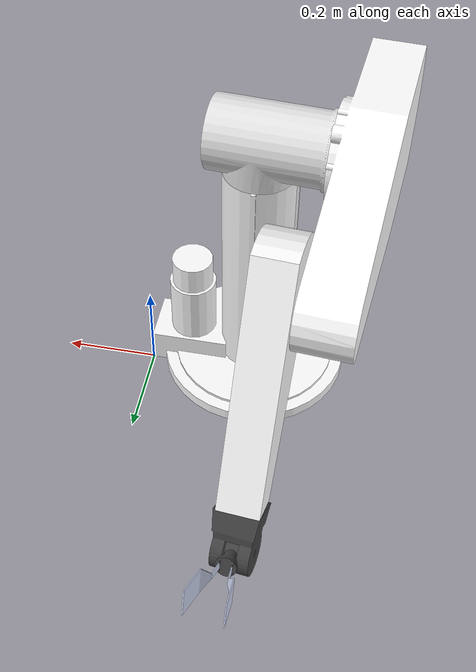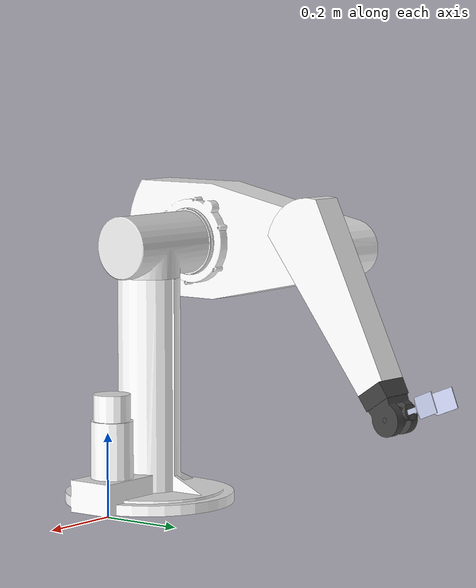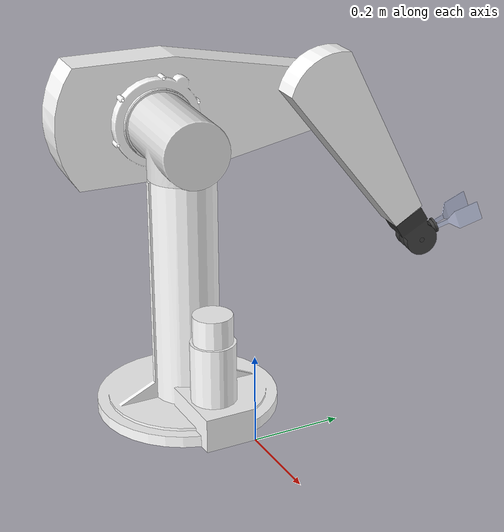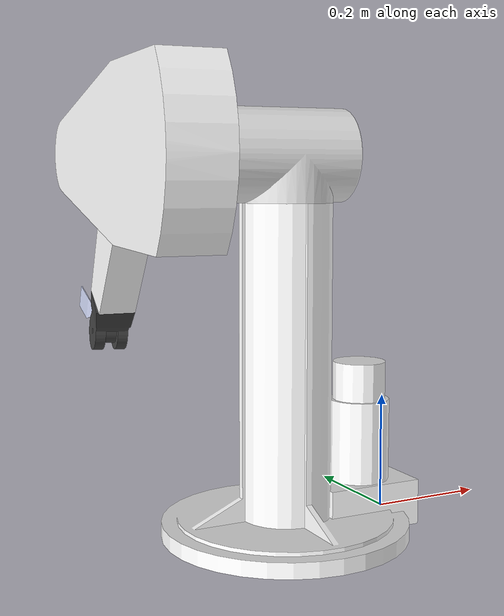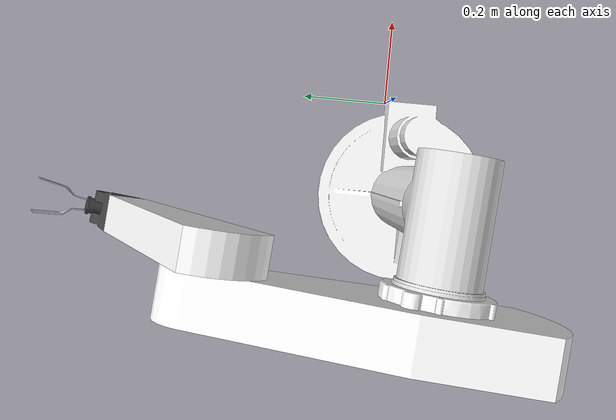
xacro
<?xml version="1.0"?>
<!-- Name your robot here -->
<robot name ="forgemate" xmlns:xacro="http://wiki.ros.org/xacro">

	<xacro:include filename="$(find forgemate)/urdf/forgemate.urdf"/>

    <!--  Gazebo plugin for control here is already added for you -->
    <gazebo>
        <plugin name="gazebo_ros_control" filename="libgazebo_ros_control.so">
            <robotNamespace>/forgemate</robotNamespace>
            <robotSimType>gazebo_ros_control/DefaultRobotHWSim</robotSimType>
            <legacyModeNS>true</legacyModeNS>
        </plugin>

    </gazebo>

</robot>

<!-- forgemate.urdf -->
<robot
  name="forgemate">
  <link
    name="world">
  </link>
  <joint
    name="dummy_joint"
    type="fixed">
    <parent
      link="world"/>
    <child
      link="base_link"/>
  </joint>
  <link
    name="base_link">
    <inertial>
      <origin
        xyz="-0.201780029716204 -0.05715 0.192164576780488"
        rpy="0 0 0" />
      <mass
        value="200.0" />
      <inertia
        ixx="0.481508422842796"
        ixy="-9.56488182282488E-18"
        ixz="0.0242161144027033"
        iyy="0.525140095558529"
        iyz="-8.25651536010494E-17"
        izz="0.152167163886255" />
    </inertial>
    <visual>
      <origin
        xyz="0 0 0"
        rpy="0 0 0" />
      <geometry>
        <mesh
          filename="package://forgemate/meshes/base_link.STL" />
      </geometry>
      <material
        name="">
        <color
          rgba="1 1 1 1" />
      </material>
    </visual>
    <collision>
      <origin
        xyz="0 0 0"
        rpy="0 0 0" />
      <geometry>name="forgemate">
  <link
    name="world">
  </link>
  <joint
    name="dummy_joint"
    type="fixed">
    <parent
      link="world"/>
    <child
      link="base_link"/>
  </joint>
        <mesh
          filename="package://forgemate/meshes/base_link.STL" />
      </geometry>
    </collision>
  </link>
  <link
    name="link1">
    <inertial>
      <origin
        xyz="-0.0785055691629313 -0.021785607631961 9.69427986219351E-08"
        rpy="0 0 0" />
      <mass
        value="100.0" />
      <inertia
        ixx="0.0275398765601917"
        ixy="-0.000269637309064723"
        ixz="-1.73298163318484E-08"
        iyy="0.0134023180791565"
        iyz="-1.31962239076616E-08"
        izz="0.0277036300623014" />
    </inertial>
    <visual>
      <origin
        xyz="0 0 0"
        rpy="0 0 0" />
      <geometry>
        <mesh
          filename="package://forgemate/meshes/link1.STL" />
      </geometry>
      <material
        name="">
        <color
          rgba="0.898039215686275 0.898039215686275 0.898039215686275 1" />
      </material>
    </visual>
    <collision>
      <origin
        xyz="0 0 0"
        rpy="0 0 0" />
      <geometry>
        <mesh
          filename="package://forgemate/meshes/link1.STL" />
      </geometry>
    </collision>
  </link>
  <joint
    name="joint1"
    type="revolute">
    <origin
      xyz="-0.2241 -0.0571499999999999 0.53594"
      rpy="1.64707043078226 1.5707963267949 0" />
    <parent
      link="base_link" />
    <child
      link="link1" />
    <axis
      xyz="1 0 0" />
    <limit
      lower="-3.14"
      upper="3.14"
      effort="100"
      velocity="1" /> />
  </joint>
  <link
    name="link2">
    <inertial>
      <origin
        xyz="0.0798588935056401 -0.127579649031366 -6.23099987517861E-05"
        rpy="0 0 0" />
      <mass
        value="5.0" />
      <inertia
        ixx="0.0969719587953052"
        ixy="0.00420732469545027"
        ixz="-1.86735555973545E-05"
        iyy="0.636943320852807"
        iyz="6.27183504326081E-05"
        izz="0.573778039051974" />
    </inertial>
    <visual>
      <origin
        xyz="0 0 0"
        rpy="0 0 0" />
      <geometry>
        <mesh
          filename="package://forgemate/meshes/link2.STL" />
      </geometry>
      <material
        name="">
        <color
          rgba="1 1 1 1" />
      </material>
    </visual>
    <collision>
      <origin
        xyz="0 0 0"
        rpy="0 0 0" />
      <geometry>
        <mesh
          filename="package://forgemate/meshes/link2.STL" />
      </geometry>
    </collision>
  </link>
  <joint
    name="joint2"
    type="revolute">
    <origin
      xyz="-0.0812799999999995 -0.0873316337262358 0"
      rpy="-3.14159265358972 1.56140864584861 -3.14159265358972" />
    <parent
      link="link1" />
    <child
      link="link2" />
    <axis
      xyz="0 1 0" />
    <limit
      lower="-1.54"
      upper="1.54"
      effort="500"
      velocity="1" />
  </joint>
  <link
    name="link3">
    <inertial>
      <origin
        xyz="0.0887993764033581 0.041868366273759 -1.11022302462516E-16"
        rpy="0 0 0" />
      <mass
        value="2.0" />
      <inertia
        ixx="0.00919452357492914"
        ixy="2.27682456221956E-17"
        ixz="1.86049092798513E-16"
        iyy="0.0873888257847391"
        iyz="2.60208521396521E-18"
        izz="0.0826492315574765" />
    </inertial>
    <visual>
      <origin
        xyz="0 0 0"
        rpy="0 0 0" />
      <geometry>
        <mesh
          filename="package://forgemate/meshes/link3.STL" />
      </geometry>
      <material
        name="">
        <color
          rgba="1 1 1 1" />
      </material>
    </visual>
    <collision>
      <origin
        xyz="0 0 0"
        rpy="0 0 0" />
      <geometry>
        <mesh
          filename="package://forgemate/meshes/link3.STL" />
      </geometry>
    </collision>
  </link>
  <joint
    name="joint3"
    type="revolute">
    <origin
      xyz="0.419174423836035 0 0"
      rpy="-3.14159265358979 -1.01798689549147 0" />
    <parent
      link="link2" />
    <child
      link="link3" />
    <axis
      xyz="0 1 0" />
    <limit
      lower="-1.54"
      upper="1.54"
      effort="50"
      velocity="1" />
  </joint>
  <link
    name="link4">
    <inertial>
      <origin
        xyz="-2.22044604925031E-16 0.0855174319596175 -2.22044604925031E-16"
        rpy="0 0 0" />
      <mass
        value="0.2" />
      <inertia
        ixx="0.000739216869581404"
        ixy="4.37069000783219E-19"
        ixz="1.35525271560688E-20"
        iyy="0.000467303684327266"
        iyz="8.53809210832335E-19"
        izz="0.000774335802618728" />
    </inertial>
    <visual>
      <origin
        xyz="0 0 0"
        rpy="0 0 0" />
      <geometry>
        <mesh
          filename="package://forgemate/meshes/link4.STL" />
      </geometry>
      <material
        name="">
        <color
          rgba="0.250980392156863 0.250980392156863 0.250980392156863 1" />
      </material>
    </visual>
    <collision>
      <origin
        xyz="0 0 0"
        rpy="0 0 0" />
      <geometry>
        <mesh
          filename="package://forgemate/meshes/link4.STL" />
      </geometry>
    </collision>
  </link>
  <joint
    name="joint4"
    type="revolute">
    <origin
      xyz="0.314211878634339 0.0418683662737575 0"
      rpy="-3.14159265358979 -0.0680732918142804 1.5707963267949" />
    <parent
      link="link3" />
    <child
      link="link4" />
    <axis
      xyz="0 1 0" />
    <limit
      lower="0.0"
      upper="0.0"
      effort="10"
      velocity="0.001" />
  </joint>
  <link
    name="link5">
    <inertial>
      <origin
        xyz="-1.54112811401319E-09 -0.0110063070000553 -1.06331571325669E-09"
        rpy="0 0 0" />
      <mass
        value="0.1" />
      <inertia
        ixx="4.31477475058453E-05"
        ixy="-4.02676130050047E-14"
        ixz="8.82914726890563E-12"
        iyy="1.69775242385585E-05"
        iyz="-6.32923614641559E-13"
        izz="4.55265791255721E-05" />
    </inertial>
    <visual>
      <origin
        xyz="0 0 0"
        rpy="0 0 0" />
      <geometry>
        <mesh
          filename="package://forgemate/meshes/link5.STL" />
      </geometry>
      <material
        name="">
        <color
          rgba="0.250980392156863 0.250980392156863 0.250980392156863 1" />
      </material>
    </visual>
    <collision>
      <origin
        xyz="0 0 0"
        rpy="0 0 0" />
      <geometry>
        <mesh
          filename="package://forgemate/meshes/link5.STL" />
      </geometry>
    </collision>
  </link>
  <joint
    name="joint5"
    type="revolute">
    <origin
      xyz="0 0.117933192090826 0"
      rpy="1.5707963267949 0.187961820626621 -1.57079632679489" />
    <parent
      link="link4" />
    <child
      link="link5" />
    <axis
      xyz="0 0 1" />
    <limit
      lower="-0.54"
      upper="1.54"
      effort="10"
      velocity="1" />
  </joint>
  <link
    name="grip1">
    <inertial>
      <origin
        xyz="0.067537735217824 -1.60982338570648E-15 0.00966346651694133"
        rpy="0 0 0" />
      <mass
        value="0.1" />
      <inertia
        ixx="1.49390981396763E-06"
        ixy="-4.34104385467829E-21"
        ixz="-2.17074200829833E-07"
        iyy="3.56125123269639E-06"
        iyz="-2.48815928255951E-21"
        izz="4.97668068318822E-06" />
    </inertial>
    <visual>
      <origin
        xyz="0 0 0"
        rpy="0 0 0" />
      <geometry>
        <mesh
          filename="package://forgemate/meshes/grip1.STL" />
      </geometry>
      <material
        name="">
        <color
          rgba="0.792156862745098 0.819607843137255 0.933333333333333 1" />
      </material>
    </visual>
    <collision>
      <origin
        xyz="0 0 0"
        rpy="0 0 0" />
      <geometry>
        <mesh
          filename="package://forgemate/meshes/grip1.STL" />
      </geometry>
    </collision>
  </link>
  <joint
    name="grip_joint1"
    type="revolute">
    <origin
      xyz="0 -0.05434 0.01105"
      rpy="0 -0.11872 -1.5708" />
    <parent
      link="link5" />
    <child
      link="grip1" />
    <axis
      xyz="0 1 0" />
    <limit
      lower="-0.75"
      upper="0.75"
      effort="0.1"
      velocity="0.1" />
  </joint>
  <link
    name="grip2">
    <inertial>
      <origin
        xyz="0.0701154475712735 1.60982338570648E-15 0.0316126213759021"
        rpy="0 0 0" />
      <mass
        value="0.1" />
      <inertia
        ixx="1.49390981396763E-06"
        ixy="3.81164826264435E-21"
        ixz="-2.17074200829837E-07"
        iyy="3.56125123269637E-06"
        iyz="-1.2837843106823E-21"
        izz="4.9766806831882E-06" />
    </inertial>
    <visual>
      <origin
        xyz="0 0 0"
        rpy="0 0 0" />
      <geometry>
        <mesh
          filename="package://forgemate/meshes/grip2.STL" />
      </geometry>
      <material
        name="">
        <color
          rgba="0.792156862745098 0.819607843137255 0.933333333333333 1" />
      </material>
    </visual>
    <collision>
      <origin
        xyz="0 0 0"
        rpy="0 0 0" />
      <geometry>
        <mesh
          filename="package://forgemate/meshes/grip2.STL" />
      </geometry>
    </collision>
  </link>
  <joint
    name="grip_joint2"
    type="revolute">
    <origin
      xyz="0 -0.05434 0.01105"
      rpy="-3.1416 0.1169 -1.5708" />
    <parent
      link="link5" />
    <child
      link="grip2" />
    <axis
      xyz="0 1 0" />
    <limit
      lower="-0.75"
      upper="0.75"
      effort="0.1"
      velocity="0.1" />
  </joint>

  <gazebo reference="base_link">
    <material>Gazebo/DarkGrey</material>
  </gazebo>
  <gazebo reference="link1">
      <material>Gazebo/White</material>
  </gazebo>
  <gazebo reference="link2">
      <material>Gazebo/DarkGrey</material>
  </gazebo>
  <gazebo reference="link3">
      <material>Gazebo/White</material>
  </gazebo>
  <gazebo reference="link4">
      <material>Gazebo/SkyBlue</material>
  </gazebo>
  <gazebo reference="link5">
      <material>Gazebo/Red</material>
  </gazebo>
  <gazebo reference="grip1">
      <material>Gazebo/Orange</material>
  </gazebo>
  <gazebo reference="grip2">
      <material>Gazebo/Orange</material>
  </gazebo>

  <transmission name="trans_1">
    <type>transmission_interface/SimpleTransmission</type>
    <joint name="joint1">
      <hardwareInterface>hardware_interface/EffortJointInterface</hardwareInterface>
    </joint>
    <actuator name="motor_1">
      <mechanicalReduction>1</mechanicalReduction>
      <hardwareInterface>hardware_interface/EffortJointInterface</hardwareInterface>
    </actuator>
  </transmission>

  <transmission name="trans_2">
    <type>transmission_interface/SimpleTransmission</type>
    <joint name="joint2">
      <hardwareInterface>hardware_interface/EffortJointInterface</hardwareInterface>
    </joint>
    <actuator name="motor_2">
      <mechanicalReduction>1</mechanicalReduction>
      <hardwareInterface>hardware_interface/EffortJointInterface</hardwareInterface>
    </actuator>
  </transmission>

  <transmission name="trans_3">
    <type>transmission_interface/SimpleTransmission</type>
    <joint name="joint3">
      <hardwareInterface>hardware_interface/EffortJointInterface</hardwareInterface>
    </joint>
    <actuator name="motor_3">
      <mechanicalReduction>1</mechanicalReduction>
      <hardwareInterface>hardware_interface/EffortJointInterface</hardwareInterface>
    </actuator>
  </transmission>

  <transmission name="trans_4">
    <type>transmission_interface/SimpleTransmission</type>
    <joint name="joint4">
      <hardwareInterface>hardware_interface/EffortJointInterface</hardwareInterface>
    </joint>
    <actuator name="motor4">
      <mechanicalReduction>1</mechanicalReduction>
      <hardwareInterface>hardware_interface/EffortJointInterface</hardwareInterface>
    </actuator>
  </transmission>

  <transmission name="trans_5">
    <type>transmission_interface/SimpleTransmission</type>
    <joint name="joint5">
      <hardwareInterface>hardware_interface/EffortJointInterface</hardwareInterface>
    </joint>
    <actuator name="motor5">
      <mechanicalReduction>1</mechanicalReduction>
      <hardwareInterface>hardware_interface/EffortJointInterface</hardwareInterface>
    </actuator>
  </transmission>

  <transmission name="trans_6">
    <type>transmission_interface/SimpleTransmission</type>
    <joint name="grip_joint1">
      <hardwareInterface>hardware_interface/EffortJointInterface</hardwareInterface>
    </joint>
    <actuator name="motor_6">
      <mechanicalReduction>1</mechanicalReduction>
      <hardwareInterface>hardware_interface/EffortJointInterface</hardwareInterface>
    </actuator>
  </transmission>

  <transmission name="trans_7">
    <type>transmission_interface/SimpleTransmission</type>
    <joint name="grip_joint2">
      <hardwareInterface>hardware_interface/EffortJointInterface</hardwareInterface>
    </joint>
    <actuator name="motor_7">
      <mechanicalReduction>1</mechanicalReduction>
      <hardwareInterface>hardware_interface/EffortJointInterface</hardwareInterface>
    </actuator>
  </transmission>
</robot>
